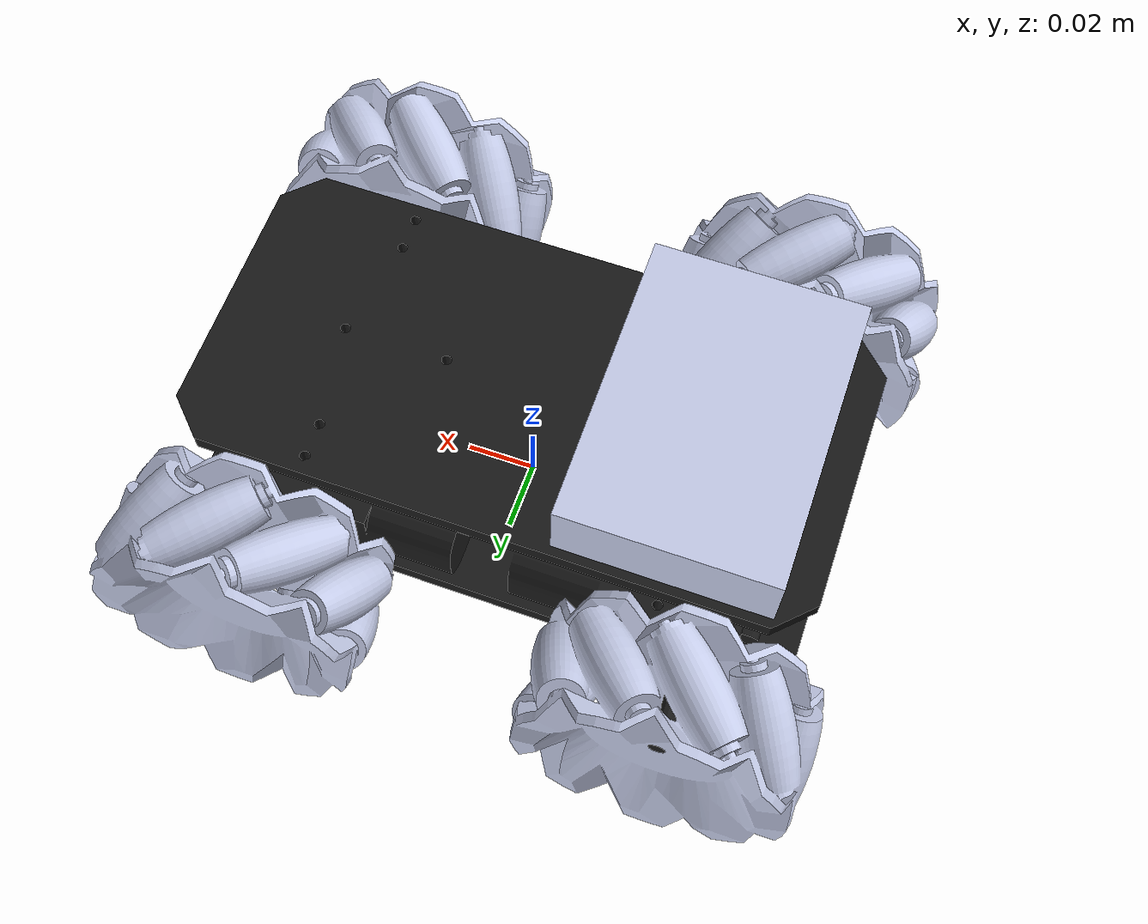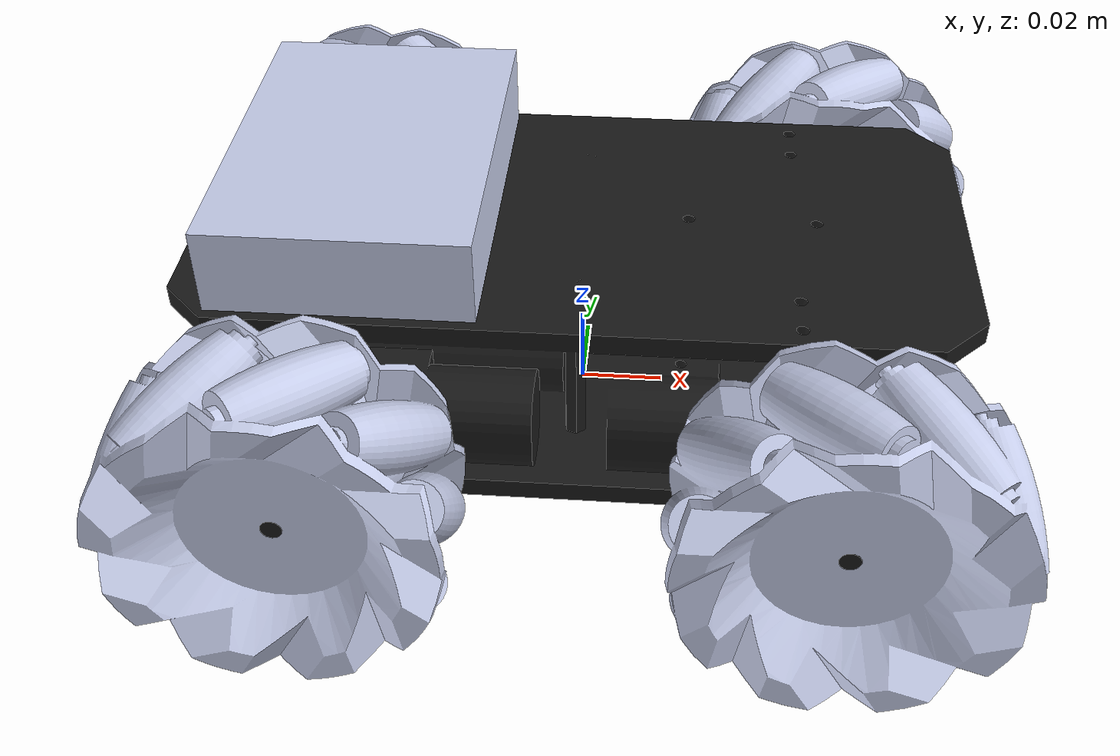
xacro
<?xml version="1.0" encoding="utf-8"?>
<robot name="ares_description" xmlns:xacro="http://www.ros.org/wiki/xacro">
  <!-- define colors-->
  <material name="black">
    <color rgba="0.10196 0.10196 0.10196 1"/>
  </material>
  <material name="yellow">
    <color rgba="0.79216 0.81961 0.93333 1"/>
  </material>
 <!-- links -->
  <link name="base_link">
    <inertial>
      <origin
        xyz="-0.0077575 -0.00011309 0.021218"
        rpy="0 0 0" />
      <mass
        value="0.33417" />
      <inertia
        ixx="0.00012497"
        ixy="8.285E-20"
        ixz="9.2609E-22"
        iyy="0.00049563"
        iyz="-1.1379E-20"
        izz="0.00060045" />
    </inertial>
    <visual>
      <origin
        xyz="0 0 0"
        rpy="0 0 0" />
      <geometry>
        <mesh
          filename="package://ares_description/meshes/base_link.STL" />
      </geometry>
      <material name="black" />
    </visual>
    <collision>
      <origin
        xyz="0 0 0"
        rpy="0 0 0" />
      <geometry>
        <mesh
          filename="package://ares_description/meshes/base_link.STL" />
      </geometry>
    </collision>
  </link>
  <!-- base_footprint -->
  <link name="base_footprint">
    <visual>
      <origin xyz="0 0 0" rpy="0 0 0" />
      <geometry>
        <box size="0.001 0.001 0.001" />
      </geometry>
    </visual>
    </link>

    <gazebo reference="base_footprint">
      <turnGravityOff>false</turnGravityOff>
    </gazebo>

    <joint name="base_footprint_joint" type="fixed">
      <origin xyz="0 0 0" rpy="0 0 0" />
      <parent link="base_footprint"/>
      <child link="base_link" />
    </joint>

  <link name="wheel_lf_link">
    <inertial>
      <origin
        xyz="-3.4398E-08 -0.0084293 1.0408E-17"
        rpy="0 0 0" />
      <mass
        value="0.073425" />
      <inertia
        ixx="1.2869E-05"
        ixy="3.7322E-21"
        ixz="-1.8502E-20"
        iyy="2.0516E-05"
        iyz="1.936E-12"
        izz="1.2869E-05" />
    </inertial>
    <visual>
      <origin
        xyz="0 0 0"
        rpy="0 0 0" />
      <geometry>
        <mesh
          filename="package://ares_description/meshes/wheel_lf_link.STL" />
      </geometry>
      <material name="yellow" />
    </visual>
    <collision>
      <origin
        xyz="0 0 0"
        rpy="0 0 0" />
      <geometry>
        <mesh
          filename="package://ares_description/meshes/wheel_lf_link.STL" />
      </geometry>
    </collision>
  </link>
  <joint name="wheel_lf_joint"
    type="continuous">
    <origin
      xyz="0.061557 0.0744 0.01625"
      rpy="0 0 0" />
    <parent
      link="base_link" />
    <child
      link="wheel_lf_link" />
    <axis
      xyz="0 1 0" />
  </joint>
  <link name="wheel_lb_link">
    <inertial>
      <origin
        xyz="3.4434E-05 -0.0084764 -1.9999E-05"
        rpy="0 0 0" />
      <mass
        value="0.073424" />
      <inertia
        ixx="1.2869E-05"
        ixy="-4.166E-11"
        ixz="-9.5074E-11"
        iyy="2.0516E-05"
        iyz="3.4508E-11"
        izz="1.2869E-05" />
    </inertial>
    <visual>
      <origin
        xyz="0 0 0"
        rpy="0 0 0" />
      <geometry>
        <mesh
          filename="package://ares_description/meshes/wheel_lb_link.STL" />
      </geometry>
      <material name="yellow" />
    </visual>
    <collision>
      <origin
        xyz="0 0 0"
        rpy="0 0 0" />
      <geometry>
        <mesh
          filename="package://ares_description/meshes/wheel_lb_link.STL" />
      </geometry>
    </collision>
  </link>
  <joint name="wheel_lb_joint"
    type="continuous">
    <origin
      xyz="-0.061486 0.0744 0.01625"
      rpy="0 0 0" />
    <parent
      link="base_link" />
    <child
      link="wheel_lb_link" />
    <axis
      xyz="0 1 0" />
  </joint>
  <link name="wheel_rf_link">
    <inertial>
      <origin
        xyz="-0.0090763 0.017871 -0.0022561"
        rpy="0 0 0" />
      <mass
        value="0.079025" />
      <inertia
        ixx="1.3208E-05"
        ixy="-1.7537E-07"
        ixz="3.0339E-08"
        iyy="2.085E-05"
        iyz="3.0959E-08"
        izz="1.3376E-05" />
    </inertial>
    <visual>
      <origin
        xyz="0 0 0"
        rpy="0 0 0" />
      <geometry>
        <mesh
          filename="package://ares_description/meshes/wheel_rf_link.STL" />
      </geometry>
      <material name="yellow" />
    </visual>
    <collision>
      <origin
        xyz="0 0 0"
        rpy="0 0 0" />
      <geometry>
        <mesh
          filename="package://ares_description/meshes/wheel_rf_link.STL" />
      </geometry>
    </collision>
  </link>
  <joint name="wheel_rf_joint"
    type="continuous">
    <origin
      xyz="0.061557 -0.0744 0.01625"
      rpy="0 0 0" />
    <parent
      link="base_link" />
    <child
      link="wheel_rf_link" />
    <axis
      xyz="0 1 0" />
  </joint>
  <link name="wheel_rb_link">
    <inertial>
      <origin
        xyz="-3.4398E-08 0.0085707 6.9389E-18"
        rpy="0 0 0" />
      <mass
        value="0.073425" />
      <inertia
        ixx="1.2869E-05"
        ixy="-5.2942E-22"
        ixz="3.254E-20"
        iyy="2.0516E-05"
        iyz="1.936E-12"
        izz="1.2869E-05" />
    </inertial>
    <visual>
      <origin
        xyz="0 0 0"
        rpy="0 0 0" />
      <geometry>
        <mesh
          filename="package://ares_description/meshes/wheel_rb_link.STL" />
      </geometry>
      <material name="yellow" />
    </visual>
    <collision>
      <origin
        xyz="0 0 0"
        rpy="0 0 0" />
      <geometry>
        <mesh
          filename="package://ares_description/meshes/wheel_rb_link.STL" />
      </geometry>
    </collision>
  </link>
  <joint name="wheel_rb_joint"
    type="continuous">
    <origin
      xyz="-0.061486 -0.0744 0.01625"
      rpy="0 0 0" />
    <parent
      link="base_link" />
    <child
      link="wheel_rb_link" />
    <axis
      xyz="0 1 0" />
  </joint>
  <link name="controller_link">
    <inertial>
      <origin
        xyz="-0.03 0.0425 0.0099913"
        rpy="0 0 0" />
      <mass
        value="0.10207" />
      <inertia
        ixx="6.4887E-05"
        ixy="9.3927E-21"
        ixz="-1.7097E-22"
        iyy="3.4011E-05"
        iyz="6.4964E-22"
        izz="9.2076E-05" />
    </inertial>
    <visual>
      <origin
        xyz="0 0 0"
        rpy="0 0 0" />
      <geometry>
        <mesh
          filename="package://ares_description/meshes/controller_link.STL" />
      </geometry>
      <material name="yellow" />
    </visual>
    <collision>
      <origin
        xyz="0 0 0"
        rpy="0 0 0" />
      <geometry>
        <mesh
          filename="package://ares_description/meshes/controller_link.STL" />
      </geometry>
    </collision>
  </link>
  <joint name="controller_joint"
    type="fixed">
    <origin
      xyz="-0.019964 -0.0425 0.05"
      rpy="0 0 0" />
    <parent
      link="base_link" />
    <child
      link="controller_link" />
    <axis
      xyz="0 0 0" />
  </joint>

  <!--manage colors!!!!!!!!!!!!!!!-->
  <gazebo reference="base_link">
    <material>Gazebo/Black </material>
  </gazebo>
  <gazebo reference="wheel_lf_link">
    <material>Gazebo/Yellow </material>
  </gazebo>
  <gazebo reference="wheel_lb_link">
    <material>Gazebo/Yellow </material>
  </gazebo>
  <gazebo reference="wheel_rf_link">
    <material>Gazebo/Yellow </material>
  </gazebo>
  <gazebo reference="wheel_rb_link">
    <material>Gazebo/Yellow </material>
  </gazebo>
  <gazebo reference="controller_link">
    <material>Gazebo/White </material>
  </gazebo>

  <!-- Transmission is important to link the joints and the controller -->
  <xacro:macro name="wheel" params="prefix">
    <transmission name="wheel_${prefix}_joint_trans">
      <type>transmission_interface/SimpleTransmission</type>
      <joint name="wheel_${prefix}_joint">
        <hardwareInterface>hardware_interface/VelocityJointInterface</hardwareInterface>
      </joint>
      <actuator name="wheel_${prefix}_joint_motor">
        <hardwareInterface>hardware_interface/VelocityJointInterface</hardwareInterface>
        <mechanicalReduction>1</mechanicalReduction>
      </actuator>
    </transmission>
  </xacro:macro>

  <wheel prefix="lf"/>
  <!--wheel prefix="lb"/-->
  <wheel prefix="rf"/>
  <!--wheel prefix="rb"/-->

  <!-- controller -->
  <gazebo>
    <plugin name="differential_drive_controller" filename="libgazebo_ros_diff_drive.so">
      <rosDebugLevel>Debug</rosDebugLevel>
      <publishWheelTF>true</publishWheelTF>
      <robotNamespace>/</robotNamespace>
      <publishTf>1</publishTf>
      <publishWheelJointState>true</publishWheelJointState>
      <alwaysOn>true</alwaysOn>
      <updateRate>100.0</updateRate>
      <legacyMode>true</legacyMode>
      <leftJoint>wheel_lf_joint</leftJoint>
      <rightJoint>wheel_rf_joint</rightJoint>
      <wheelSeparation>0.1488</wheelSeparation>
      <wheelDiameter>0.0325</wheelDiameter>
      <broadcastTF>1</broadcastTF>
      <wheelTorque>30</wheelTorque>
      <wheelAcceleration>1.8</wheelAcceleration>
      <commandTopic>cmd_vel</commandTopic>
      <odometryFrame>odom</odometryFrame>
      <odometryTopic>odom</odometryTopic>
      <robotBaseFrame>base_footprint</robotBaseFrame>
    </plugin>
  </gazebo>

</robot>
